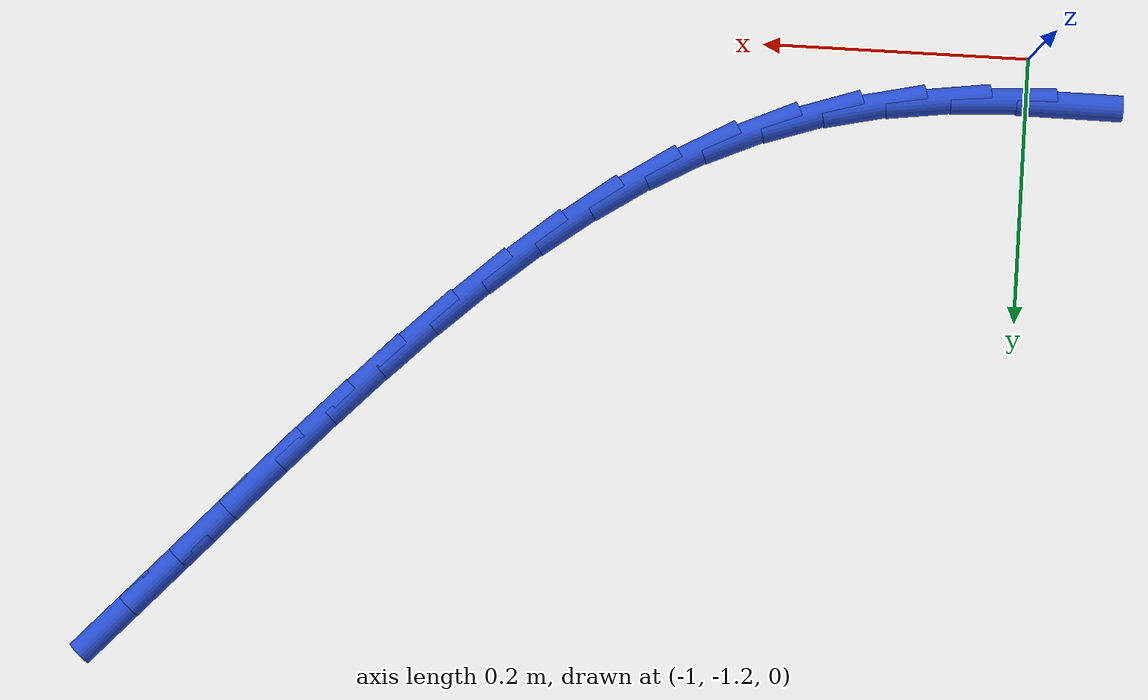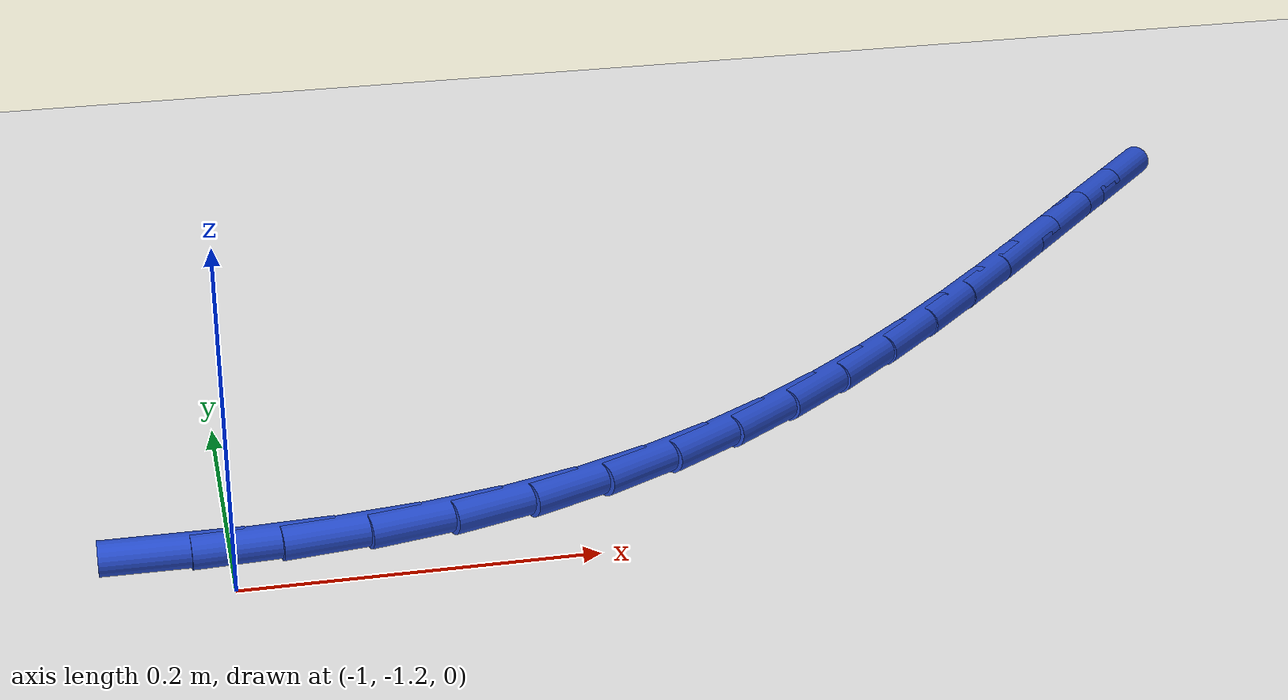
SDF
<sdf version="1.6">
 <world name="default">
  <model name="ground_plane">
   <static>1</static>
   <link name="link">
    <collision name="collision">
     <geometry><plane><normal>0 0 1</normal><size>100 100</size></plane></geometry>
     <surface><friction><ode><mu>100</mu><mu2>50</mu2></ode></friction></surface>
    </collision>
    <visual name="visual">
     <cast_shadows>0</cast_shadows>
     <geometry><plane><normal>0 0 1</normal><size>100 100</size></plane></geometry>
     <material>
      <script><uri>file://media/materials/scripts/gazebo.material</uri><name>Gazebo/WhiteGlow</name></script>
     </material>
    </visual>
   </link>
  </model>
  <model name="line">
   <link name="link_106">
    <pose>-1.031613313053206 -1.1658650144606673 0.01 0 1.57 -0.00682977823317108</pose>
    <collision name="collision">
     <geometry><cylinder><radius>0.01</radius><length>0.08</length></cylinder></geometry>
    </collision>
    <visual name="visual">
     <material>
      <script><name>Gazebo/Blue</name><uri>file://media/materials/scripts/gazebo.material</uri></script>
     </material>
     <geometry><cylinder><radius>0.01</radius><length>0.08</length></cylinder></geometry>
    </visual>
   </link>
   <link name="link_107">
    <pose>-0.9818888538188235 -1.1662046267705228 0.01 0 1.57 0.056411015503265154</pose>
    <collision name="collision">
     <geometry><cylinder><radius>0.01</radius><length>0.08</length></cylinder></geometry>
    </collision>
    <visual name="visual">
     <material>
      <script><name>Gazebo/Blue</name><uri>file://media/materials/scripts/gazebo.material</uri></script>
     </material>
     <geometry><cylinder><radius>0.01</radius><length>0.08</length></cylinder></geometry>
    </visual>
   </link>
   <link name="link_108">
    <pose>-0.9330539041415998 -1.1634468718013347 0.01 0 1.57 0.13201928821637626</pose>
    <collision name="collision">
     <geometry><cylinder><radius>0.01</radius><length>0.08</length></cylinder></geometry>
    </collision>
    <visual name="visual">
     <material>
      <script><name>Gazebo/Blue</name><uri>file://media/materials/scripts/gazebo.material</uri></script>
     </material>
     <geometry><cylinder><radius>0.01</radius><length>0.08</length></cylinder></geometry>
    </visual>
   </link>
   <link name="link_109">
    <pose>-0.8853457711354495 -1.1571116293603676 0.01 0 1.57 0.2206046999536629</pose>
    <collision name="collision">
     <geometry><cylinder><radius>0.01</radius><length>0.08</length></cylinder></geometry>
    </collision>
    <visual name="visual">
     <material>
      <script><name>Gazebo/Blue</name><uri>file://media/materials/scripts/gazebo.material</uri></script>
     </material>
     <geometry><cylinder><radius>0.01</radius><length>0.08</length></cylinder></geometry>
    </visual>
   </link>
   <link name="link_110">
    <pose>-0.8390017619142904 -1.1467187792548876 0.01 0 1.57 0.32076884447046206</pose>
    <collision name="collision">
     <geometry><cylinder><radius>0.01</radius><length>0.08</length></cylinder></geometry>
    </collision>
    <visual name="visual">
     <material>
      <script><name>Gazebo/Blue</name><uri>file://media/materials/scripts/gazebo.material</uri></script>
     </material>
     <geometry><cylinder><radius>0.01</radius><length>0.08</length></cylinder></geometry>
    </visual>
   </link>
   <link name="link_111">
    <pose>-0.7942361006785579 -1.131845706100495 0.01 0 1.57 0.4186067603603033</pose>
    <collision name="collision">
     <geometry><cylinder><radius>0.01</radius><length>0.08</length></cylinder></geometry>
    </collision>
    <visual name="visual">
     <material>
      <script><name>Gazebo/Blue</name><uri>file://media/materials/scripts/gazebo.material</uri></script>
     </material>
     <geometry><cylinder><radius>0.01</radius><length>0.08</length></cylinder></geometry>
    </visual>
   </link>
   <link name="link_112">
    <pose>-0.7510392215157476 -1.1126273067853938 0.01 0 1.57 0.5055198740790195</pose>
    <collision name="collision">
     <geometry><cylinder><radius>0.01</radius><length>0.08</length></cylinder></geometry>
    </collision>
    <visual name="visual">
     <material>
      <script><name>Gazebo/Blue</name><uri>file://media/materials/scripts/gazebo.material</uri></script>
     </material>
     <geometry><cylinder><radius>0.01</radius><length>0.08</length></cylinder></geometry>
    </visual>
   </link>
   <link name="link_113">
    <pose>-0.7092758536980407 -1.0895116375967502 0.01 0 1.57 0.5808470216001773</pose>
    <collision name="collision">
     <geometry><cylinder><radius>0.01</radius><length>0.08</length></cylinder></geometry>
    </collision>
    <visual name="visual">
     <material>
      <script><name>Gazebo/Blue</name><uri>file://media/materials/scripts/gazebo.material</uri></script>
     </material>
     <geometry><cylinder><radius>0.01</radius><length>0.08</length></cylinder></geometry>
    </visual>
   </link>
   <link name="link_114">
    <pose>-0.6688093305857843 -1.062950232356865 0.01 0 1.57 0.6447349607770362</pose>
    <collision name="collision">
     <geometry><cylinder><radius>0.01</radius><length>0.08</length></cylinder></geometry>
    </collision>
    <visual name="visual">
     <material>
      <script><name>Gazebo/Blue</name><uri>file://media/materials/scripts/gazebo.material</uri></script>
     </material>
     <geometry><cylinder><radius>0.01</radius><length>0.08</length></cylinder></geometry>
    </visual>
   </link>
   <link name="link_115">
    <pose>-0.6295029855393226 -1.0333946248880388 0.01 0 1.57 0.697750881522683</pose>
    <collision name="collision">
     <geometry><cylinder><radius>0.01</radius><length>0.08</length></cylinder></geometry>
    </collision>
    <visual name="visual">
     <material>
      <script><name>Gazebo/Blue</name><uri>file://media/materials/scripts/gazebo.material</uri></script>
     </material>
     <geometry><cylinder><radius>0.01</radius><length>0.08</length></cylinder></geometry>
    </visual>
   </link>
   <link name="link_116">
    <pose>-0.5912201519190012 -1.0012963490125717 0.01 0 1.57 0.7406343381085045</pose>
    <collision name="collision">
     <geometry><cylinder><radius>0.01</radius><length>0.08</length></cylinder></geometry>
    </collision>
    <visual name="visual">
     <material>
      <script><name>Gazebo/Blue</name><uri>file://media/materials/scripts/gazebo.material</uri></script>
     </material>
     <geometry><cylinder><radius>0.01</radius><length>0.08</length></cylinder></geometry>
    </visual>
   </link>
   <link name="link_117">
    <pose>-0.5538241630851648 -0.9671069385527634 0.01 0 1.57 0.7741285270709573</pose>
    <collision name="collision">
     <geometry><cylinder><radius>0.01</radius><length>0.08</length></cylinder></geometry>
    </collision>
    <visual name="visual">
     <material>
      <script><name>Gazebo/Blue</name><uri>file://media/materials/scripts/gazebo.material</uri></script>
     </material>
     <geometry><cylinder><radius>0.01</radius><length>0.08</length></cylinder></geometry>
    </visual>
   </link>
   <link name="link_118">
    <pose>-0.5171783523981602 -0.9312779273309161 0.01 0 1.57 0.798878351278819</pose>
    <collision name="collision">
     <geometry><cylinder><radius>0.01</radius><length>0.08</length></cylinder></geometry>
    </collision>
    <visual name="visual">
     <material>
      <script><name>Gazebo/Blue</name><uri>file://media/materials/scripts/gazebo.material</uri></script>
     </material>
     <geometry><cylinder><radius>0.01</radius><length>0.08</length></cylinder></geometry>
    </visual>
   </link>
   <link name="link_119">
    <pose>-0.4811460532183321 -0.8942608491693289 0.01 0 1.57 0.8153739723311417</pose>
    <collision name="collision">
     <geometry><cylinder><radius>0.01</radius><length>0.08</length></cylinder></geometry>
    </collision>
    <visual name="visual">
     <material>
      <script><name>Gazebo/Blue</name><uri>file://media/materials/scripts/gazebo.material</uri></script>
     </material>
     <geometry><cylinder><radius>0.01</radius><length>0.08</length></cylinder></geometry>
    </visual>
   </link>
   <link name="link_120">
    <pose>-0.4455905989060255 -0.8565072378903026 0.01 0 1.57 0.8239208667247947</pose>
    <collision name="collision">
     <geometry><cylinder><radius>0.01</radius><length>0.08</length></cylinder></geometry>
    </collision>
    <visual name="visual">
     <material>
      <script><name>Gazebo/Blue</name><uri>file://media/materials/scripts/gazebo.material</uri></script>
     </material>
     <geometry><cylinder><radius>0.01</radius><length>0.08</length></cylinder></geometry>
    </visual>
   </link>
   <link name="link_121">
    <pose>-0.41037532282158623 -0.8184686273161376 0.01 0 1.57 0.8246229227820602</pose>
    <collision name="collision">
     <geometry><cylinder><radius>0.01</radius><length>0.08</length></cylinder></geometry>
    </collision>
    <visual name="visual">
     <material>
      <script><name>Gazebo/Blue</name><uri>file://media/materials/scripts/gazebo.material</uri></script>
     </material>
     <geometry><cylinder><radius>0.01</radius><length>0.08</length></cylinder></geometry>
    </visual>
   </link>
   <link name="link_122">
    <pose>-0.37536356080559946 -0.7805965470277495 0.01 0 1.57 0.8202457761616121</pose>
    <collision name="collision">
     <geometry><cylinder><radius>0.01</radius><length>0.08</length></cylinder></geometry>
    </collision>
    <visual name="visual">
     <material>
      <script><name>Gazebo/Blue</name><uri>file://media/materials/scripts/gazebo.material</uri></script>
     </material>
     <geometry><cylinder><radius>0.01</radius><length>0.08</length></cylinder></geometry>
    </visual>
   </link>
   <link name="link_123">
    <pose>-0.3404960589880686 -0.7432101496144782 0.01 0 1.57 0.8211507081255188</pose>
    <collision name="collision">
     <geometry><cylinder><radius>0.01</radius><length>0.08</length></cylinder></geometry>
    </collision>
    <visual name="visual">
     <material>
      <script><name>Gazebo/Blue</name><uri>file://media/materials/scripts/gazebo.material</uri></script>
     </material>
     <geometry><cylinder><radius>0.01</radius><length>0.08</length></cylinder></geometry>
    </visual>
   </link>
  </model>
 </world>
</sdf>
